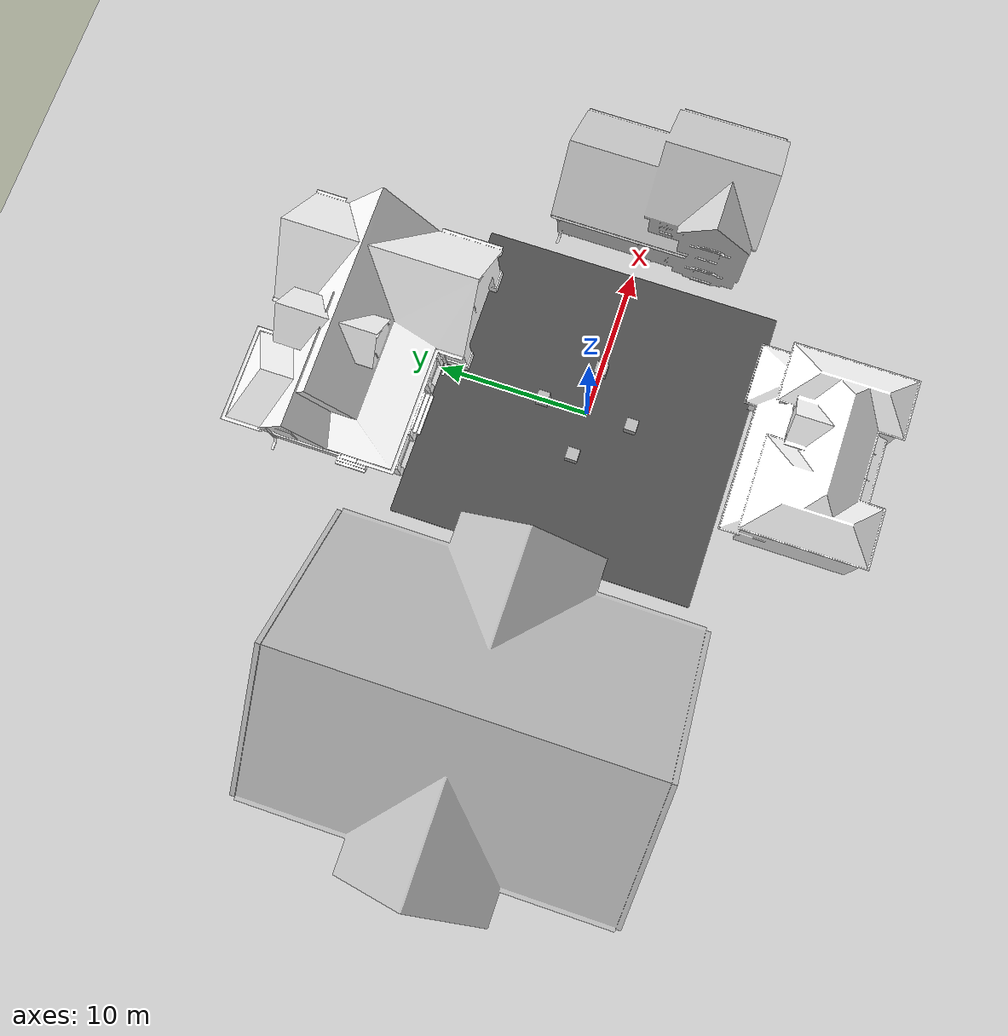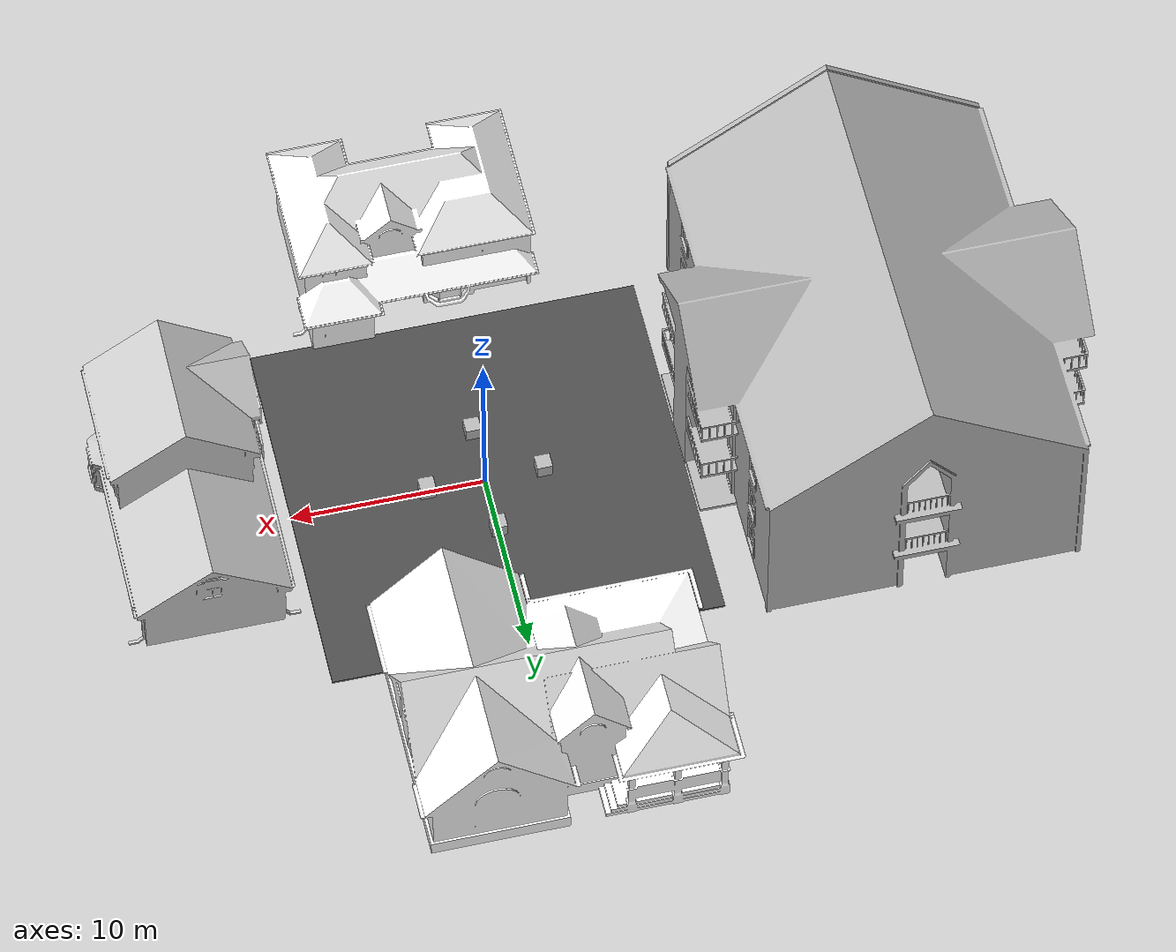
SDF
<sdf version="1.7">
 <world name="default">
  <light name="sun" type="directional">
   <pose>0 0 10 0 -0 0</pose>
   <diffuse>0.8 0.8 0.8 1</diffuse>
   <specular>0.2 0.2 0.2 1</specular>
   <attenuation>
    <range>1000</range>
    <constant>0.9</constant>
    <linear>0.01</linear>
    <quadratic>0.001</quadratic>
   </attenuation>
   <direction>-0.5 0.1 -0.9</direction>
   <spot><inner_angle>0</inner_angle><outer_angle>0</outer_angle><falloff>0</falloff></spot>
  </light>
  <model name="ground_plane">
   <static>1</static>
   <link name="link">
    <collision name="collision">
     <geometry><plane><normal>0 0 1</normal><size>100 100</size></plane></geometry>
     <surface><friction><ode><mu>100</mu><mu2>50</mu2></ode></friction></surface>
    </collision>
    <visual name="visual">
     <cast_shadows>0</cast_shadows>
     <geometry><plane><normal>0 0 1</normal><size>100 100</size></plane></geometry>
     <material>
      <script><uri>file://media/materials/scripts/gazebo.material</uri><name>Gazebo/Grey</name></script>
     </material>
    </visual>
   </link>
  </model>
  <model name="asphalt_plane">
   <static>1</static>
   <link name="link">
    <collision name="collision"><geometry><box><size>20 20 0.1</size></box></geometry></collision>
    <visual name="visual">
     <cast_shadows>0</cast_shadows>
     <geometry><box><size>20 20 0.1</size></box></geometry>
     <material>
      <script>
       <uri>model://asphalt_plane/materials/scripts</uri>
       <uri>model://asphalt_plane/materials/textures</uri>
       <name>vrc/asphalt</name>
      </script>
     </material>
    </visual>
   </link>
  </model>
  <physics name="default_physics" default="0" type="ode">
   <ode>
    <solver>
     <type>quick</type>
     <iters>10</iters>
     <sor>1.3</sor>
     <use_dynamic_moi_rescaling>0</use_dynamic_moi_rescaling>
    </solver>
    <constraints>
     <cfm>0</cfm>
     <erp>0.2</erp>
     <contact_max_correcting_vel>100</contact_max_correcting_vel>
     <contact_surface_layer>0.001</contact_surface_layer>
    </constraints>
   </ode>
   <max_step_size>0.004</max_step_size>
   <real_time_factor>1</real_time_factor>
   <real_time_update_rate>250</real_time_update_rate>
  </physics>
  <spherical_coordinates>
   <surface_model>EARTH_WGS84</surface_model>
   <latitude_deg>-34.66</latitude_deg>
   <longitude_deg>-58.4683</longitude_deg>
   <elevation>30.18</elevation>
   <heading_deg>0</heading_deg>
  </spherical_coordinates>
  <gravity>0 0 -9.8066</gravity>
  <magnetic_field>6e-06 2.3e-05 -4.2e-05</magnetic_field>
  <atmosphere type="adiabatic"/>
  <scene><ambient>0.4 0.4 0.4 1</ambient><background>0.7 0.7 0.7 1</background><shadows>1</shadows></scene>
  <model name="number1">
   <pose>0 3 0.4 0 -0 0</pose>
   <static>1</static>
   <link name="link">
    <visual name="visual">
     <geometry><mesh><uri>model://number1/meshes/number.dae</uri></mesh></geometry>
     <material>
      <script>
       <uri>model://number1/materials/scripts</uri>
       <uri>model://number1/materials/textures</uri>
       <name>Number/One</name>
      </script>
     </material>
    </visual>
   </link>
  </model>
  <model name="number2">
   <pose>0 -3 0.4 0 -0 0</pose>
   <static>1</static>
   <link name="link">
    <visual name="visual">
     <geometry><mesh><uri>model://number1/meshes/number.dae</uri></mesh></geometry>
     <material>
      <script>
       <uri>model://number2/materials/scripts</uri>
       <uri>model://number2/materials/textures</uri>
       <name>Number/Two</name>
      </script>
     </material>
    </visual>
   </link>
  </model>
  <model name="number3">
   <pose>3 0 0.4 0 -0 0</pose>
   <static>1</static>
   <link name="link">
    <visual name="visual">
     <geometry><mesh><uri>model://number1/meshes/number.dae</uri></mesh></geometry>
     <material>
      <script>
       <uri>model://number3/materials/scripts</uri>
       <uri>model://number3/materials/textures</uri>
       <name>Number/Three</name>
      </script>
     </material>
    </visual>
   </link>
  </model>
  <model name="number4">
   <pose>-3 0 0.4 0 -0 0</pose>
   <static>1</static>
   <link name="link">
    <visual name="visual">
     <geometry><mesh><uri>model://number1/meshes/number.dae</uri></mesh></geometry>
     <material>
      <script>
       <uri>model://number4/materials/scripts</uri>
       <uri>model://number4/materials/textures</uri>
       <name>Number/Four</name>
      </script>
     </material>
    </visual>
   </link>
  </model>
  <model name="House 1">
   <static>1</static>
   <link name="link">
    <collision name="collision">
     <geometry><mesh><uri>model://house_1/meshes/house_1.dae</uri><scale>1.5 1.5 1.5</scale></mesh></geometry>
    </collision>
    <visual name="visual">
     <geometry><mesh><uri>model://house_1/meshes/house_1.dae</uri><scale>1.5 1.5 1.5</scale></mesh></geometry>
     <material>
      <script>
       <uri>model://house_1/materials/scripts</uri>
       <uri>model://house_1/materials/textures</uri>
       <name>House_1/Diffuse</name>
      </script>
      <shader type="normal_map_tangent_space"><normal_map>House_1_Normal.png</normal_map></shader>
     </material>
    </visual>
   </link>
   <pose>0 15 0 0 -0 0</pose>
  </model>
  <model name="House 2">
   <static>1</static>
   <link name="link">
    <collision name="collision">
     <geometry><mesh><uri>model://house_2/meshes/house_2.dae</uri><scale>1.5 1.5 1.5</scale></mesh></geometry>
    </collision>
    <visual name="visual">
     <geometry><mesh><uri>model://house_2/meshes/house_2.dae</uri><scale>1.5 1.5 1.5</scale></mesh></geometry>
     <material>
      <script>
       <uri>model://house_2/materials/scripts</uri>
       <uri>model://house_2/materials/textures</uri>
       <uri>model://house_1/materials/textures</uri>
       <name>House_2/Diffuse</name>
      </script>
      <shader type="normal_map_tangent_space">
       <normal_map>model://house_1/materials/textures/House_1_Normal.png</normal_map>
      </shader>
     </material>
    </visual>
   </link>
   <pose>0 -15 0 0 -0 0</pose>
  </model>
  <model name="House 3">
   <static>1</static>
   <link name="link">
    <collision name="collision">
     <geometry><mesh><uri>model://house_3/meshes/house_3.dae</uri><scale>1.5 1.5 1.5</scale></mesh></geometry>
    </collision>
    <visual name="visual">
     <geometry><mesh><uri>model://house_3/meshes/house_3.dae</uri><scale>1.5 1.5 1.5</scale></mesh></geometry>
     <material>
      <script>
       <uri>model://house_3/materials/scripts</uri>
       <uri>model://house_3/materials/textures</uri>
       <uri>model://house_1/materials/textures</uri>
       <name>House_3/Diffuse</name>
      </script>
      <shader type="normal_map_tangent_space">
       <normal_map>model://house_1/materials/textures/House_1_Normal.png</normal_map>
      </shader>
     </material>
    </visual>
   </link>
   <pose>15 0 0 0 -0 1.57</pose>
  </model>
  <model name="apartment">
   <static>1</static>
   <link name="link">
    <collision name="collision">
     <geometry><mesh><uri>model://apartment/meshes/apartment.dae</uri></mesh></geometry>
    </collision>
    <visual name="visual">
     <geometry><mesh><uri>model://apartment/meshes/apartment.dae</uri></mesh></geometry>
    </visual>
   </link>
   <pose>-20 0 0 0 -0 0</pose>
  </model>
 </world>
</sdf>
